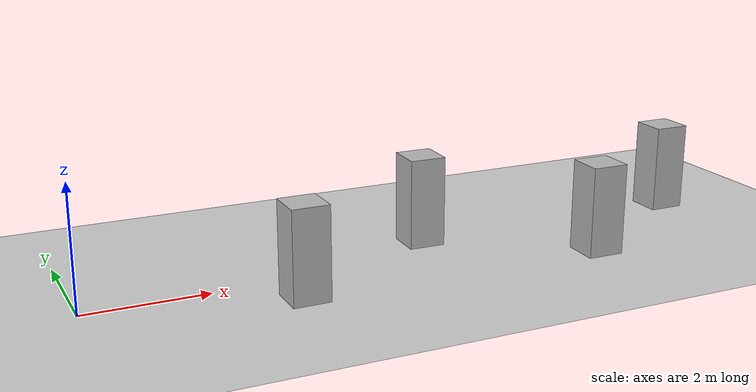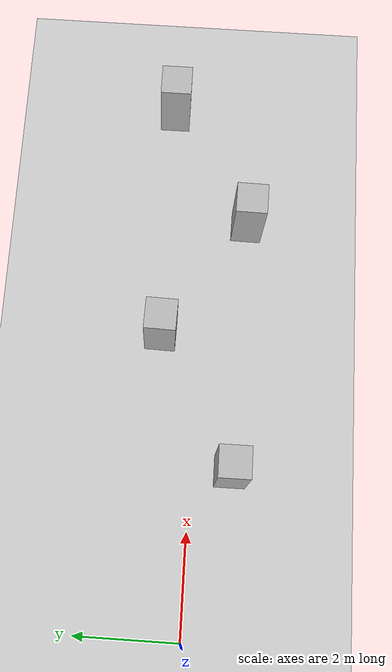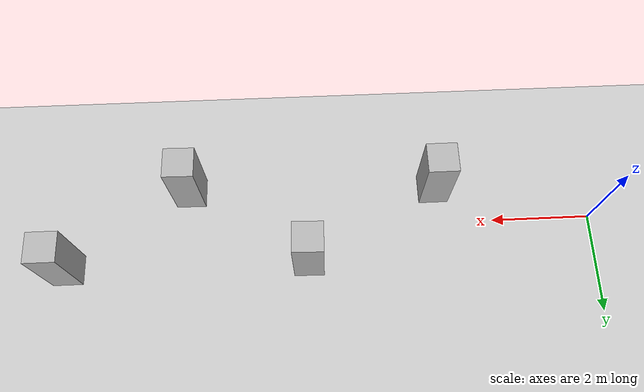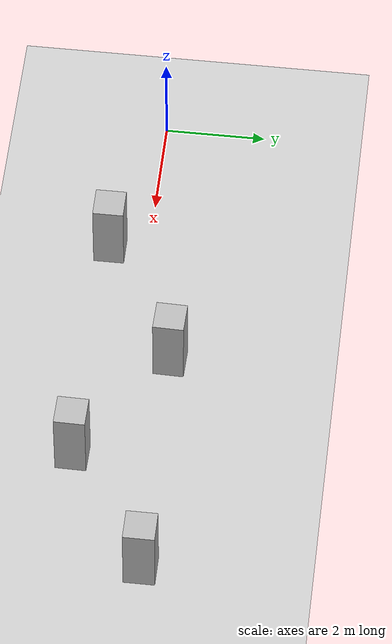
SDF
<?xml version="1.0"?>
<sdf version="1.6">
  <world name="v2-04c-r-static-s4508">
    <gravity>0 0 -9.81</gravity>
    <physics name="v2_deterministic" type="ode">
      <max_step_size>0.002</max_step_size>
      <real_time_update_rate>500</real_time_update_rate>
    </physics>
    <include>
      <uri>model://sun</uri>
    </include>
    <include>
      <uri>model://ground_plane</uri>
    </include>
    <model name="r-pillar-1">
      <static>true</static>
      <pose>3.183846954 -0.759899896 0.750000000 0 0 0.002914602</pose>
      <link name="link">
        <collision name="collision">
          <geometry>
            <box>
              <size>0.600000 0.600000 1.500000</size>
            </box>
          </geometry>
        </collision>
        <visual name="visual">
          <geometry>
            <box>
              <size>0.600000 0.600000 1.500000</size>
            </box>
          </geometry>
        </visual>
      </link>
    </model>
    <model name="r-pillar-2">
      <static>true</static>
      <pose>5.821954913 0.735306375 0.750000000 0 0 -0.025321727</pose>
      <link name="link">
        <collision name="collision">
          <geometry>
            <box>
              <size>0.600000 0.600000 1.500000</size>
            </box>
          </geometry>
        </collision>
        <visual name="visual">
          <geometry>
            <box>
              <size>0.600000 0.600000 1.500000</size>
            </box>
          </geometry>
        </visual>
      </link>
    </model>
    <model name="r-pillar-3">
      <static>true</static>
      <pose>8.242250453 -0.863734843 0.750000000 0 0 -0.014821195</pose>
      <link name="link">
        <collision name="collision">
          <geometry>
            <box>
              <size>0.600000 0.600000 1.500000</size>
            </box>
          </geometry>
        </collision>
        <visual name="visual">
          <geometry>
            <box>
              <size>0.600000 0.600000 1.500000</size>
            </box>
          </geometry>
        </visual>
      </link>
    </model>
    <model name="r-pillar-4">
      <static>true</static>
      <pose>10.685171258 0.737013749 0.750000000 0 0 0.000443975</pose>
      <link name="link">
        <collision name="collision">
          <geometry>
            <box>
              <size>0.600000 0.600000 1.500000</size>
            </box>
          </geometry>
        </collision>
        <visual name="visual">
          <geometry>
            <box>
              <size>0.600000 0.600000 1.500000</size>
            </box>
          </geometry>
        </visual>
      </link>
    </model>
  </world>
</sdf>
